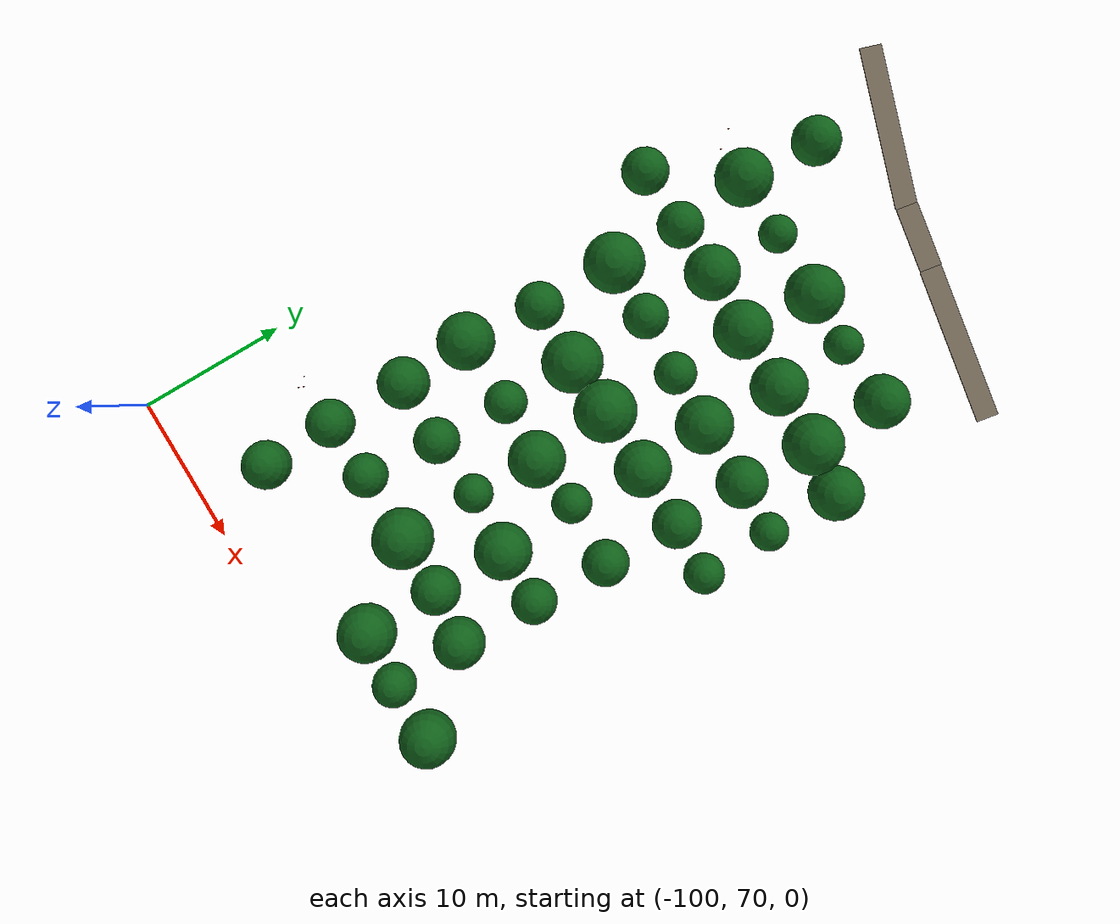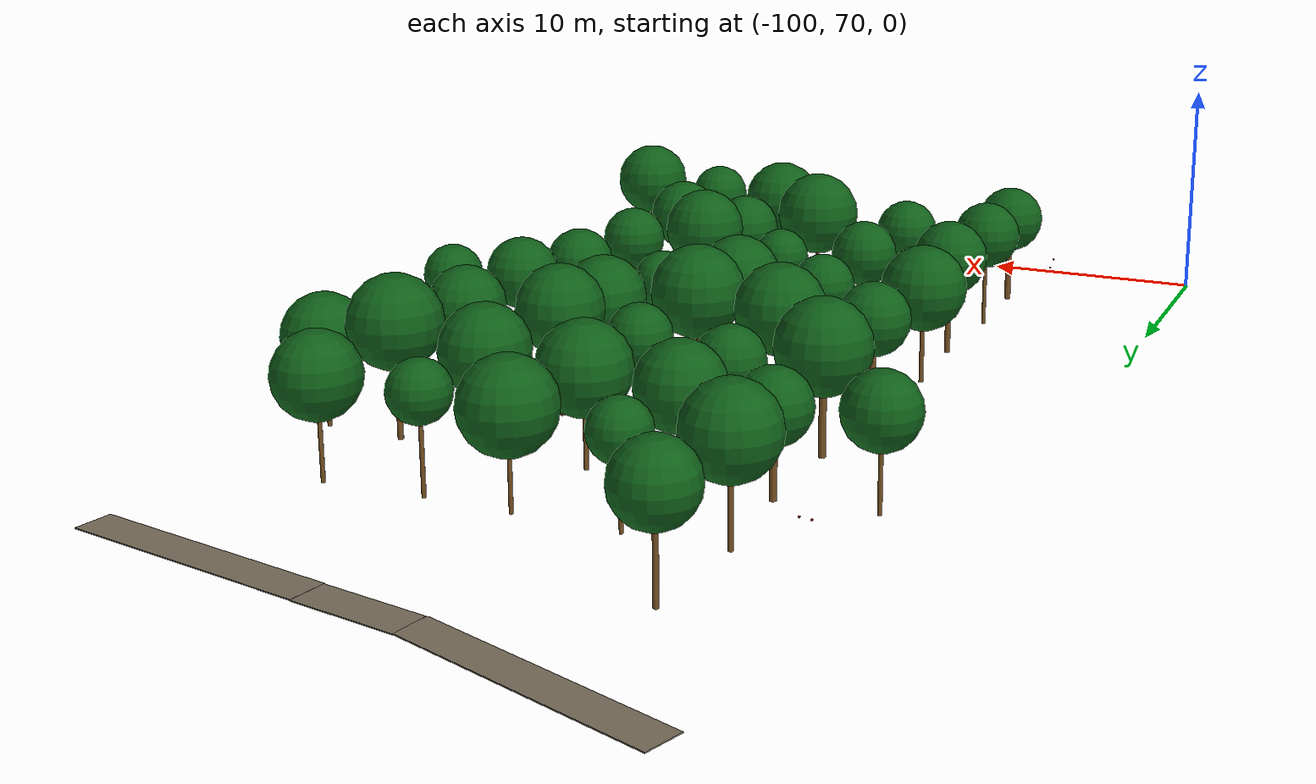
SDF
<sdf version="1.9">
 <world name="cheongsong_orchard">
  <model name="road_63">
   <static>true</static>
   <pose>-76.1 118.3 0.02 0 0 2.9706</pose>
   <link name="link">
    <collision name="collision">
     <geometry><box><size>10.6 1.5 0.04</size></box></geometry>
     <surface><friction><ode><mu>0.9</mu><mu2>0.9</mu2></ode></friction></surface>
    </collision>
    <visual name="visual">
     <geometry><box><size>10.6 1.5 0.04</size></box></geometry>
     <material><ambient>0.4 0.35 0.28 1</ambient><diffuse>0.5 0.45 0.38 1</diffuse></material>
    </visual>
   </link>
  </model>
  <model name="road_64">
   <static>true</static>
   <pose>-83.5 119.6 0.02 0 0 2.9759</pose>
   <link name="link">
    <collision name="collision">
     <geometry><box><size>4.4 1.5 0.04</size></box></geometry>
     <surface><friction><ode><mu>0.9</mu><mu2>0.9</mu2></ode></friction></surface>
    </collision>
    <visual name="visual">
     <geometry><box><size>4.4 1.5 0.04</size></box></geometry>
     <material><ambient>0.4 0.35 0.28 1</ambient><diffuse>0.5 0.45 0.38 1</diffuse></material>
    </visual>
   </link>
  </model>
  <model name="road_65">
   <static>true</static>
   <pose>-90.8 121.6 0.02 0 0 2.8271</pose>
   <link name="link">
    <collision name="collision">
     <geometry><box><size>10.9 1.5 0.04</size></box></geometry>
     <surface><friction><ode><mu>0.9</mu><mu2>0.9</mu2></ode></friction></surface>
    </collision>
    <visual name="visual">
     <geometry><box><size>10.9 1.5 0.04</size></box></geometry>
     <material><ambient>0.4 0.35 0.28 1</ambient><diffuse>0.5 0.45 0.38 1</diffuse></material>
    </visual>
   </link>
  </model>
  <model name="apple_tree_1976">
   <static>true</static>
   <pose>-92.21 75.95 0 0 0 0</pose>
   <link name="link">
    <collision name="trunk_col">
     <pose>0 0 1.26 0 0 0</pose>
     <geometry><cylinder><radius>0.140</radius><length>2.53</length></cylinder></geometry>
    </collision>
    <visual name="trunk_vis">
     <pose>0 0 1.26 0 0 0</pose>
     <geometry><cylinder><radius>0.140</radius><length>2.53</length></cylinder></geometry>
     <material><ambient>0.35 0.22 0.08 1</ambient><diffuse>0.45 0.30 0.12 1</diffuse></material>
    </visual>
    <collision name="canopy_col">
     <pose>0 0 4.08 0 0 0</pose>
     <geometry><sphere><radius>1.55</radius></sphere></geometry>
    </collision>
    <visual name="canopy_vis">
     <pose>0 0 4.08 0 0 0</pose>
     <geometry><sphere><radius>1.55</radius></sphere></geometry>
     <material><ambient>0.04 0.28 0.06 1</ambient><diffuse>0.06 0.38 0.10 1</diffuse></material>
    </visual>
   </link>
  </model>
  <model name="apple_tree_1979">
   <static>true</static>
   <pose>-79.98 75.96 0 0 0 0</pose>
   <link name="link">
    <collision name="trunk_col">
     <pose>0 0 1.09 0 0 0</pose>
     <geometry><cylinder><radius>0.108</radius><length>2.17</length></cylinder></geometry>
    </collision>
    <visual name="trunk_vis">
     <pose>0 0 1.09 0 0 0</pose>
     <geometry><cylinder><radius>0.108</radius><length>2.17</length></cylinder></geometry>
     <material><ambient>0.35 0.22 0.08 1</ambient><diffuse>0.45 0.30 0.12 1</diffuse></material>
    </visual>
    <collision name="canopy_col">
     <pose>0 0 4.04 0 0 0</pose>
     <geometry><sphere><radius>1.87</radius></sphere></geometry>
    </collision>
    <visual name="canopy_vis">
     <pose>0 0 4.04 0 0 0</pose>
     <geometry><sphere><radius>1.87</radius></sphere></geometry>
     <material><ambient>0.04 0.28 0.06 1</ambient><diffuse>0.06 0.38 0.10 1</diffuse></material>
    </visual>
   </link>
  </model>
  <model name="apple_tree_1980">
   <static>true</static>
   <pose>-76.31 75.76 0 0 0 0</pose>
   <link name="link">
    <collision name="trunk_col">
     <pose>0 0 1.29 0 0 0</pose>
     <geometry><cylinder><radius>0.095</radius><length>2.57</length></cylinder></geometry>
    </collision>
    <visual name="trunk_vis">
     <pose>0 0 1.29 0 0 0</pose>
     <geometry><cylinder><radius>0.095</radius><length>2.57</length></cylinder></geometry>
     <material><ambient>0.35 0.22 0.08 1</ambient><diffuse>0.45 0.30 0.12 1</diffuse></material>
    </visual>
    <collision name="canopy_col">
     <pose>0 0 3.98 0 0 0</pose>
     <geometry><sphere><radius>1.40</radius></sphere></geometry>
    </collision>
    <visual name="canopy_vis">
     <pose>0 0 3.98 0 0 0</pose>
     <geometry><sphere><radius>1.40</radius></sphere></geometry>
     <material><ambient>0.04 0.28 0.06 1</ambient><diffuse>0.06 0.38 0.10 1</diffuse></material>
    </visual>
   </link>
  </model>
  <model name="apple_tree_1981">
   <static>true</static>
   <pose>-72.44 75.97 0 0 0 0</pose>
   <link name="link">
    <collision name="trunk_col">
     <pose>0 0 1.32 0 0 0</pose>
     <geometry><cylinder><radius>0.081</radius><length>2.65</length></cylinder></geometry>
    </collision>
    <visual name="trunk_vis">
     <pose>0 0 1.32 0 0 0</pose>
     <geometry><cylinder><radius>0.081</radius><length>2.65</length></cylinder></geometry>
     <material><ambient>0.35 0.22 0.08 1</ambient><diffuse>0.45 0.30 0.12 1</diffuse></material>
    </visual>
    <collision name="canopy_col">
     <pose>0 0 4.44 0 0 0</pose>
     <geometry><sphere><radius>1.80</radius></sphere></geometry>
    </collision>
    <visual name="canopy_vis">
     <pose>0 0 4.44 0 0 0</pose>
     <geometry><sphere><radius>1.80</radius></sphere></geometry>
     <material><ambient>0.04 0.28 0.06 1</ambient><diffuse>0.06 0.38 0.10 1</diffuse></material>
    </visual>
   </link>
  </model>
  <model name="apple_tree_2031">
   <static>true</static>
   <pose>-92.38 80.76 0 0 0 0</pose>
   <link name="link">
    <collision name="trunk_col">
     <pose>0 0 1.40 0 0 0</pose>
     <geometry><cylinder><radius>0.085</radius><length>2.80</length></cylinder></geometry>
    </collision>
    <visual name="trunk_vis">
     <pose>0 0 1.40 0 0 0</pose>
     <geometry><cylinder><radius>0.085</radius><length>2.80</length></cylinder></geometry>
     <material><ambient>0.35 0.22 0.08 1</ambient><diffuse>0.45 0.30 0.12 1</diffuse></material>
    </visual>
    <collision name="canopy_col">
     <pose>0 0 4.34 0 0 0</pose>
     <geometry><sphere><radius>1.53</radius></sphere></geometry>
    </collision>
    <visual name="canopy_vis">
     <pose>0 0 4.34 0 0 0</pose>
     <geometry><sphere><radius>1.53</radius></sphere></geometry>
     <material><ambient>0.04 0.28 0.06 1</ambient><diffuse>0.06 0.38 0.10 1</diffuse></material>
    </visual>
   </link>
  </model>
  <model name="apple_tree_2032">
   <static>true</static>
   <pose>-88.48 80.97 0 0 0 0</pose>
   <link name="link">
    <collision name="trunk_col">
     <pose>0 0 1.41 0 0 0</pose>
     <geometry><cylinder><radius>0.101</radius><length>2.83</length></cylinder></geometry>
    </collision>
    <visual name="trunk_vis">
     <pose>0 0 1.41 0 0 0</pose>
     <geometry><cylinder><radius>0.101</radius><length>2.83</length></cylinder></geometry>
     <material><ambient>0.35 0.22 0.08 1</ambient><diffuse>0.45 0.30 0.12 1</diffuse></material>
    </visual>
    <collision name="canopy_col">
     <pose>0 0 4.24 0 0 0</pose>
     <geometry><sphere><radius>1.41</radius></sphere></geometry>
    </collision>
    <visual name="canopy_vis">
     <pose>0 0 4.24 0 0 0</pose>
     <geometry><sphere><radius>1.41</radius></sphere></geometry>
     <material><ambient>0.04 0.28 0.06 1</ambient><diffuse>0.06 0.38 0.10 1</diffuse></material>
    </visual>
   </link>
  </model>
  <model name="apple_tree_2033">
   <static>true</static>
   <pose>-83.93 81.04 0 0 0 0</pose>
   <link name="link">
    <collision name="trunk_col">
     <pose>0 0 1.37 0 0 0</pose>
     <geometry><cylinder><radius>0.094</radius><length>2.73</length></cylinder></geometry>
    </collision>
    <visual name="trunk_vis">
     <pose>0 0 1.37 0 0 0</pose>
     <geometry><cylinder><radius>0.094</radius><length>2.73</length></cylinder></geometry>
     <material><ambient>0.35 0.22 0.08 1</ambient><diffuse>0.45 0.30 0.12 1</diffuse></material>
    </visual>
    <collision name="canopy_col">
     <pose>0 0 4.67 0 0 0</pose>
     <geometry><sphere><radius>1.94</radius></sphere></geometry>
    </collision>
    <visual name="canopy_vis">
     <pose>0 0 4.67 0 0 0</pose>
     <geometry><sphere><radius>1.94</radius></sphere></geometry>
     <material><ambient>0.04 0.28 0.06 1</ambient><diffuse>0.06 0.38 0.10 1</diffuse></material>
    </visual>
   </link>
  </model>
  <model name="apple_tree_2034">
   <static>true</static>
   <pose>-80.04 80.92 0 0 0 0</pose>
   <link name="link">
    <collision name="trunk_col">
     <pose>0 0 0.99 0 0 0</pose>
     <geometry><cylinder><radius>0.145</radius><length>1.98</length></cylinder></geometry>
    </collision>
    <visual name="trunk_vis">
     <pose>0 0 0.99 0 0 0</pose>
     <geometry><cylinder><radius>0.145</radius><length>1.98</length></cylinder></geometry>
     <material><ambient>0.35 0.22 0.08 1</ambient><diffuse>0.45 0.30 0.12 1</diffuse></material>
    </visual>
    <collision name="canopy_col">
     <pose>0 0 3.56 0 0 0</pose>
     <geometry><sphere><radius>1.58</radius></sphere></geometry>
    </collision>
    <visual name="canopy_vis">
     <pose>0 0 3.56 0 0 0</pose>
     <geometry><sphere><radius>1.58</radius></sphere></geometry>
     <material><ambient>0.04 0.28 0.06 1</ambient><diffuse>0.06 0.38 0.10 1</diffuse></material>
    </visual>
   </link>
  </model>
  <model name="apple_tree_2035">
   <static>true</static>
   <pose>-76.48 80.56 0 0 0 0</pose>
   <link name="link">
    <collision name="trunk_col">
     <pose>0 0 1.09 0 0 0</pose>
     <geometry><cylinder><radius>0.141</radius><length>2.18</length></cylinder></geometry>
    </collision>
    <visual name="trunk_vis">
     <pose>0 0 1.09 0 0 0</pose>
     <geometry><cylinder><radius>0.141</radius><length>2.18</length></cylinder></geometry>
     <material><ambient>0.35 0.22 0.08 1</ambient><diffuse>0.45 0.30 0.12 1</diffuse></material>
    </visual>
    <collision name="canopy_col">
     <pose>0 0 3.84 0 0 0</pose>
     <geometry><sphere><radius>1.66</radius></sphere></geometry>
    </collision>
    <visual name="canopy_vis">
     <pose>0 0 3.84 0 0 0</pose>
     <geometry><sphere><radius>1.66</radius></sphere></geometry>
     <material><ambient>0.04 0.28 0.06 1</ambient><diffuse>0.06 0.38 0.10 1</diffuse></material>
    </visual>
   </link>
  </model>
  <model name="apple_tree_2088">
   <static>true</static>
   <pose>-92.20 85.96 0 0 0 0</pose>
   <link name="link">
    <collision name="trunk_col">
     <pose>0 0 1.38 0 0 0</pose>
     <geometry><cylinder><radius>0.121</radius><length>2.77</length></cylinder></geometry>
    </collision>
    <visual name="trunk_vis">
     <pose>0 0 1.38 0 0 0</pose>
     <geometry><cylinder><radius>0.121</radius><length>2.77</length></cylinder></geometry>
     <material><ambient>0.35 0.22 0.08 1</ambient><diffuse>0.45 0.30 0.12 1</diffuse></material>
    </visual>
    <collision name="canopy_col">
     <pose>0 0 4.42 0 0 0</pose>
     <geometry><sphere><radius>1.65</radius></sphere></geometry>
    </collision>
    <visual name="canopy_vis">
     <pose>0 0 4.42 0 0 0</pose>
     <geometry><sphere><radius>1.65</radius></sphere></geometry>
     <material><ambient>0.04 0.28 0.06 1</ambient><diffuse>0.06 0.38 0.10 1</diffuse></material>
    </visual>
   </link>
  </model>
  <model name="apple_tree_2089">
   <static>true</static>
   <pose>-88.08 85.87 0 0 0 0</pose>
   <link name="link">
    <collision name="trunk_col">
     <pose>0 0 1.36 0 0 0</pose>
     <geometry><cylinder><radius>0.090</radius><length>2.72</length></cylinder></geometry>
    </collision>
    <visual name="trunk_vis">
     <pose>0 0 1.36 0 0 0</pose>
     <geometry><cylinder><radius>0.090</radius><length>2.72</length></cylinder></geometry>
     <material><ambient>0.35 0.22 0.08 1</ambient><diffuse>0.45 0.30 0.12 1</diffuse></material>
    </visual>
    <collision name="canopy_col">
     <pose>0 0 4.19 0 0 0</pose>
     <geometry><sphere><radius>1.47</radius></sphere></geometry>
    </collision>
    <visual name="canopy_vis">
     <pose>0 0 4.19 0 0 0</pose>
     <geometry><sphere><radius>1.47</radius></sphere></geometry>
     <material><ambient>0.04 0.28 0.06 1</ambient><diffuse>0.06 0.38 0.10 1</diffuse></material>
    </visual>
   </link>
  </model>
  <model name="apple_tree_2090">
   <static>true</static>
   <pose>-84.07 86.10 0 0 0 0</pose>
   <link name="link">
    <collision name="trunk_col">
     <pose>0 0 1.23 0 0 0</pose>
     <geometry><cylinder><radius>0.123</radius><length>2.47</length></cylinder></geometry>
    </collision>
    <visual name="trunk_vis">
     <pose>0 0 1.23 0 0 0</pose>
     <geometry><cylinder><radius>0.123</radius><length>2.47</length></cylinder></geometry>
     <material><ambient>0.35 0.22 0.08 1</ambient><diffuse>0.45 0.30 0.12 1</diffuse></material>
    </visual>
    <collision name="canopy_col">
     <pose>0 0 3.72 0 0 0</pose>
     <geometry><sphere><radius>1.25</radius></sphere></geometry>
    </collision>
    <visual name="canopy_vis">
     <pose>0 0 3.72 0 0 0</pose>
     <geometry><sphere><radius>1.25</radius></sphere></geometry>
     <material><ambient>0.04 0.28 0.06 1</ambient><diffuse>0.06 0.38 0.10 1</diffuse></material>
    </visual>
   </link>
  </model>
  <model name="apple_tree_2091">
   <static>true</static>
   <pose>-80.09 85.97 0 0 0 0</pose>
   <link name="link">
    <collision name="trunk_col">
     <pose>0 0 1.41 0 0 0</pose>
     <geometry><cylinder><radius>0.090</radius><length>2.82</length></cylinder></geometry>
    </collision>
    <visual name="trunk_vis">
     <pose>0 0 1.41 0 0 0</pose>
     <geometry><cylinder><radius>0.090</radius><length>2.82</length></cylinder></geometry>
     <material><ambient>0.35 0.22 0.08 1</ambient><diffuse>0.45 0.30 0.12 1</diffuse></material>
    </visual>
    <collision name="canopy_col">
     <pose>0 0 4.63 0 0 0</pose>
     <geometry><sphere><radius>1.82</radius></sphere></geometry>
    </collision>
    <visual name="canopy_vis">
     <pose>0 0 4.63 0 0 0</pose>
     <geometry><sphere><radius>1.82</radius></sphere></geometry>
     <material><ambient>0.04 0.28 0.06 1</ambient><diffuse>0.06 0.38 0.10 1</diffuse></material>
    </visual>
   </link>
  </model>
  <model name="apple_tree_2092">
   <static>true</static>
   <pose>-76.31 85.92 0 0 0 0</pose>
   <link name="link">
    <collision name="trunk_col">
     <pose>0 0 1.15 0 0 0</pose>
     <geometry><cylinder><radius>0.118</radius><length>2.30</length></cylinder></geometry>
    </collision>
    <visual name="trunk_vis">
     <pose>0 0 1.15 0 0 0</pose>
     <geometry><cylinder><radius>0.118</radius><length>2.30</length></cylinder></geometry>
     <material><ambient>0.35 0.22 0.08 1</ambient><diffuse>0.45 0.30 0.12 1</diffuse></material>
    </visual>
    <collision name="canopy_col">
     <pose>0 0 3.76 0 0 0</pose>
     <geometry><sphere><radius>1.46</radius></sphere></geometry>
    </collision>
    <visual name="canopy_vis">
     <pose>0 0 3.76 0 0 0</pose>
     <geometry><sphere><radius>1.46</radius></sphere></geometry>
     <material><ambient>0.04 0.28 0.06 1</ambient><diffuse>0.06 0.38 0.10 1</diffuse></material>
    </visual>
   </link>
  </model>
  <model name="apple_tree_2144">
   <static>true</static>
   <pose>-92.48 90.59 0 0 0 0</pose>
   <link name="link">
    <collision name="trunk_col">
     <pose>0 0 1.18 0 0 0</pose>
     <geometry><cylinder><radius>0.094</radius><length>2.36</length></cylinder></geometry>
    </collision>
    <visual name="trunk_vis">
     <pose>0 0 1.18 0 0 0</pose>
     <geometry><cylinder><radius>0.094</radius><length>2.36</length></cylinder></geometry>
     <material><ambient>0.35 0.22 0.08 1</ambient><diffuse>0.45 0.30 0.12 1</diffuse></material>
    </visual>
    <collision name="canopy_col">
     <pose>0 0 4.20 0 0 0</pose>
     <geometry><sphere><radius>1.84</radius></sphere></geometry>
    </collision>
    <visual name="canopy_vis">
     <pose>0 0 4.20 0 0 0</pose>
     <geometry><sphere><radius>1.84</radius></sphere></geometry>
     <material><ambient>0.04 0.28 0.06 1</ambient><diffuse>0.06 0.38 0.10 1</diffuse></material>
    </visual>
   </link>
  </model>
  <model name="apple_tree_2145">
   <static>true</static>
   <pose>-87.96 90.77 0 0 0 0</pose>
   <link name="link">
    <collision name="trunk_col">
     <pose>0 0 1.25 0 0 0</pose>
     <geometry><cylinder><radius>0.149</radius><length>2.50</length></cylinder></geometry>
    </collision>
    <visual name="trunk_vis">
     <pose>0 0 1.25 0 0 0</pose>
     <geometry><cylinder><radius>0.149</radius><length>2.50</length></cylinder></geometry>
     <material><ambient>0.35 0.22 0.08 1</ambient><diffuse>0.45 0.30 0.12 1</diffuse></material>
    </visual>
    <collision name="canopy_col">
     <pose>0 0 3.87 0 0 0</pose>
     <geometry><sphere><radius>1.37</radius></sphere></geometry>
    </collision>
    <visual name="canopy_vis">
     <pose>0 0 3.87 0 0 0</pose>
     <geometry><sphere><radius>1.37</radius></sphere></geometry>
     <material><ambient>0.04 0.28 0.06 1</ambient><diffuse>0.06 0.38 0.10 1</diffuse></material>
    </visual>
   </link>
  </model>
  <model name="apple_tree_2146">
   <static>true</static>
   <pose>-83.89 90.61 0 0 0 0</pose>
   <link name="link">
    <collision name="trunk_col">
     <pose>0 0 0.99 0 0 0</pose>
     <geometry><cylinder><radius>0.131</radius><length>1.99</length></cylinder></geometry>
    </collision>
    <visual name="trunk_vis">
     <pose>0 0 0.99 0 0 0</pose>
     <geometry><cylinder><radius>0.131</radius><length>1.99</length></cylinder></geometry>
     <material><ambient>0.35 0.22 0.08 1</ambient><diffuse>0.45 0.30 0.12 1</diffuse></material>
    </visual>
    <collision name="canopy_col">
     <pose>0 0 3.82 0 0 0</pose>
     <geometry><sphere><radius>1.83</radius></sphere></geometry>
    </collision>
    <visual name="canopy_vis">
     <pose>0 0 3.82 0 0 0</pose>
     <geometry><sphere><radius>1.83</radius></sphere></geometry>
     <material><ambient>0.04 0.28 0.06 1</ambient><diffuse>0.06 0.38 0.10 1</diffuse></material>
    </visual>
   </link>
  </model>
  <model name="apple_tree_2147">
   <static>true</static>
   <pose>-80.36 91.06 0 0 0 0</pose>
   <link name="link">
    <collision name="trunk_col">
     <pose>0 0 1.06 0 0 0</pose>
     <geometry><cylinder><radius>0.127</radius><length>2.11</length></cylinder></geometry>
    </collision>
    <visual name="trunk_vis">
     <pose>0 0 1.06 0 0 0</pose>
     <geometry><cylinder><radius>0.127</radius><length>2.11</length></cylinder></geometry>
     <material><ambient>0.35 0.22 0.08 1</ambient><diffuse>0.45 0.30 0.12 1</diffuse></material>
    </visual>
    <collision name="canopy_col">
     <pose>0 0 3.40 0 0 0</pose>
     <geometry><sphere><radius>1.29</radius></sphere></geometry>
    </collision>
    <visual name="canopy_vis">
     <pose>0 0 3.40 0 0 0</pose>
     <geometry><sphere><radius>1.29</radius></sphere></geometry>
     <material><ambient>0.04 0.28 0.06 1</ambient><diffuse>0.06 0.38 0.10 1</diffuse></material>
    </visual>
   </link>
  </model>
  <model name="apple_tree_2148">
   <static>true</static>
   <pose>-76.09 91.00 0 0 0 0</pose>
   <link name="link">
    <collision name="trunk_col">
     <pose>0 0 1.14 0 0 0</pose>
     <geometry><cylinder><radius>0.131</radius><length>2.28</length></cylinder></geometry>
    </collision>
    <visual name="trunk_vis">
     <pose>0 0 1.14 0 0 0</pose>
     <geometry><cylinder><radius>0.131</radius><length>2.28</length></cylinder></geometry>
     <material><ambient>0.35 0.22 0.08 1</ambient><diffuse>0.45 0.30 0.12 1</diffuse></material>
    </visual>
    <collision name="canopy_col">
     <pose>0 0 3.78 0 0 0</pose>
     <geometry><sphere><radius>1.50</radius></sphere></geometry>
    </collision>
    <visual name="canopy_vis">
     <pose>0 0 3.78 0 0 0</pose>
     <geometry><sphere><radius>1.50</radius></sphere></geometry>
     <material><ambient>0.04 0.28 0.06 1</ambient><diffuse>0.06 0.38 0.10 1</diffuse></material>
    </visual>
   </link>
  </model>
  <model name="apple_tree_2185">
   <static>true</static>
   <pose>-92.04 95.67 0 0 0 0</pose>
   <link name="link">
    <collision name="trunk_col">
     <pose>0 0 1.30 0 0 0</pose>
     <geometry><cylinder><radius>0.127</radius><length>2.59</length></cylinder></geometry>
    </collision>
    <visual name="trunk_vis">
     <pose>0 0 1.30 0 0 0</pose>
     <geometry><cylinder><radius>0.127</radius><length>2.59</length></cylinder></geometry>
     <material><ambient>0.35 0.22 0.08 1</ambient><diffuse>0.45 0.30 0.12 1</diffuse></material>
    </visual>
    <collision name="canopy_col">
     <pose>0 0 4.12 0 0 0</pose>
     <geometry><sphere><radius>1.53</radius></sphere></geometry>
    </collision>
    <visual name="canopy_vis">
     <pose>0 0 4.12 0 0 0</pose>
     <geometry><sphere><radius>1.53</radius></sphere></geometry>
     <material><ambient>0.04 0.28 0.06 1</ambient><diffuse>0.06 0.38 0.10 1</diffuse></material>
    </visual>
   </link>
  </model>
  <model name="apple_tree_2186">
   <static>true</static>
   <pose>-87.95 95.63 0 0 0 0</pose>
   <link name="link">
    <collision name="trunk_col">
     <pose>0 0 1.05 0 0 0</pose>
     <geometry><cylinder><radius>0.087</radius><length>2.11</length></cylinder></geometry>
    </collision>
    <visual name="trunk_vis">
     <pose>0 0 1.05 0 0 0</pose>
     <geometry><cylinder><radius>0.087</radius><length>2.11</length></cylinder></geometry>
     <material><ambient>0.35 0.22 0.08 1</ambient><diffuse>0.45 0.30 0.12 1</diffuse></material>
    </visual>
    <collision name="canopy_col">
     <pose>0 0 4.06 0 0 0</pose>
     <geometry><sphere><radius>1.95</radius></sphere></geometry>
    </collision>
    <visual name="canopy_vis">
     <pose>0 0 4.06 0 0 0</pose>
     <geometry><sphere><radius>1.95</radius></sphere></geometry>
     <material><ambient>0.04 0.28 0.06 1</ambient><diffuse>0.06 0.38 0.10 1</diffuse></material>
    </visual>
   </link>
  </model>
  <model name="apple_tree_2187">
   <static>true</static>
   <pose>-84.30 95.84 0 0 0 0</pose>
   <link name="link">
    <collision name="trunk_col">
     <pose>0 0 1.24 0 0 0</pose>
     <geometry><cylinder><radius>0.085</radius><length>2.48</length></cylinder></geometry>
    </collision>
    <visual name="trunk_vis">
     <pose>0 0 1.24 0 0 0</pose>
     <geometry><cylinder><radius>0.085</radius><length>2.48</length></cylinder></geometry>
     <material><ambient>0.35 0.22 0.08 1</ambient><diffuse>0.45 0.30 0.12 1</diffuse></material>
    </visual>
    <collision name="canopy_col">
     <pose>0 0 4.47 0 0 0</pose>
     <geometry><sphere><radius>1.99</radius></sphere></geometry>
    </collision>
    <visual name="canopy_vis">
     <pose>0 0 4.47 0 0 0</pose>
     <geometry><sphere><radius>1.99</radius></sphere></geometry>
     <material><ambient>0.04 0.28 0.06 1</ambient><diffuse>0.06 0.38 0.10 1</diffuse></material>
    </visual>
   </link>
  </model>
  <model name="apple_tree_2188">
   <static>true</static>
   <pose>-79.97 96.02 0 0 0 0</pose>
   <link name="link">
    <collision name="trunk_col">
     <pose>0 0 0.98 0 0 0</pose>
     <geometry><cylinder><radius>0.097</radius><length>1.95</length></cylinder></geometry>
    </collision>
    <visual name="trunk_vis">
     <pose>0 0 0.98 0 0 0</pose>
     <geometry><cylinder><radius>0.097</radius><length>1.95</length></cylinder></geometry>
     <material><ambient>0.35 0.22 0.08 1</ambient><diffuse>0.45 0.30 0.12 1</diffuse></material>
    </visual>
    <collision name="canopy_col">
     <pose>0 0 3.78 0 0 0</pose>
     <geometry><sphere><radius>1.82</radius></sphere></geometry>
    </collision>
    <visual name="canopy_vis">
     <pose>0 0 3.78 0 0 0</pose>
     <geometry><sphere><radius>1.82</radius></sphere></geometry>
     <material><ambient>0.04 0.28 0.06 1</ambient><diffuse>0.06 0.38 0.10 1</diffuse></material>
    </visual>
   </link>
  </model>
  <model name="apple_tree_2189">
   <static>true</static>
   <pose>-76.01 96.08 0 0 0 0</pose>
   <link name="link">
    <collision name="trunk_col">
     <pose>0 0 1.45 0 0 0</pose>
     <geometry><cylinder><radius>0.088</radius><length>2.89</length></cylinder></geometry>
    </collision>
    <visual name="trunk_vis">
     <pose>0 0 1.45 0 0 0</pose>
     <geometry><cylinder><radius>0.088</radius><length>2.89</length></cylinder></geometry>
     <material><ambient>0.35 0.22 0.08 1</ambient><diffuse>0.45 0.30 0.12 1</diffuse></material>
    </visual>
    <collision name="canopy_col">
     <pose>0 0 4.45 0 0 0</pose>
     <geometry><sphere><radius>1.56</radius></sphere></geometry>
    </collision>
    <visual name="canopy_vis">
     <pose>0 0 4.45 0 0 0</pose>
     <geometry><sphere><radius>1.56</radius></sphere></geometry>
     <material><ambient>0.04 0.28 0.06 1</ambient><diffuse>0.06 0.38 0.10 1</diffuse></material>
    </visual>
   </link>
  </model>
  <model name="apple_tree_2190">
   <static>true</static>
   <pose>-72.42 95.97 0 0 0 0</pose>
   <link name="link">
    <collision name="trunk_col">
     <pose>0 0 1.36 0 0 0</pose>
     <geometry><cylinder><radius>0.113</radius><length>2.71</length></cylinder></geometry>
    </collision>
    <visual name="trunk_vis">
     <pose>0 0 1.36 0 0 0</pose>
     <geometry><cylinder><radius>0.113</radius><length>2.71</length></cylinder></geometry>
     <material><ambient>0.35 0.22 0.08 1</ambient><diffuse>0.45 0.30 0.12 1</diffuse></material>
    </visual>
    <collision name="canopy_col">
     <pose>0 0 4.01 0 0 0</pose>
     <geometry><sphere><radius>1.30</radius></sphere></geometry>
    </collision>
    <visual name="canopy_vis">
     <pose>0 0 4.01 0 0 0</pose>
     <geometry><sphere><radius>1.30</radius></sphere></geometry>
     <material><ambient>0.04 0.28 0.06 1</ambient><diffuse>0.06 0.38 0.10 1</diffuse></material>
    </visual>
   </link>
  </model>
  <model name="apple_tree_2226">
   <static>true</static>
   <pose>-91.93 101.02 0 0 0 0</pose>
   <link name="link">
    <collision name="trunk_col">
     <pose>0 0 1.26 0 0 0</pose>
     <geometry><cylinder><radius>0.145</radius><length>2.51</length></cylinder></geometry>
    </collision>
    <visual name="trunk_vis">
     <pose>0 0 1.26 0 0 0</pose>
     <geometry><cylinder><radius>0.145</radius><length>2.51</length></cylinder></geometry>
     <material><ambient>0.35 0.22 0.08 1</ambient><diffuse>0.45 0.30 0.12 1</diffuse></material>
    </visual>
    <collision name="canopy_col">
     <pose>0 0 4.45 0 0 0</pose>
     <geometry><sphere><radius>1.94</radius></sphere></geometry>
    </collision>
    <visual name="canopy_vis">
     <pose>0 0 4.45 0 0 0</pose>
     <geometry><sphere><radius>1.94</radius></sphere></geometry>
     <material><ambient>0.04 0.28 0.06 1</ambient><diffuse>0.06 0.38 0.10 1</diffuse></material>
    </visual>
   </link>
  </model>
  <model name="apple_tree_2227">
   <static>true</static>
   <pose>-88.11 101.10 0 0 0 0</pose>
   <link name="link">
    <collision name="trunk_col">
     <pose>0 0 0.98 0 0 0</pose>
     <geometry><cylinder><radius>0.147</radius><length>1.95</length></cylinder></geometry>
    </collision>
    <visual name="trunk_vis">
     <pose>0 0 0.98 0 0 0</pose>
     <geometry><cylinder><radius>0.147</radius><length>1.95</length></cylinder></geometry>
     <material><ambient>0.35 0.22 0.08 1</ambient><diffuse>0.45 0.30 0.12 1</diffuse></material>
    </visual>
    <collision name="canopy_col">
     <pose>0 0 3.42 0 0 0</pose>
     <geometry><sphere><radius>1.46</radius></sphere></geometry>
    </collision>
    <visual name="canopy_vis">
     <pose>0 0 3.42 0 0 0</pose>
     <geometry><sphere><radius>1.46</radius></sphere></geometry>
     <material><ambient>0.04 0.28 0.06 1</ambient><diffuse>0.06 0.38 0.10 1</diffuse></material>
    </visual>
   </link>
  </model>
  <model name="apple_tree_2228">
   <static>true</static>
   <pose>-84.08 100.84 0 0 0 0</pose>
   <link name="link">
    <collision name="trunk_col">
     <pose>0 0 1.25 0 0 0</pose>
     <geometry><cylinder><radius>0.080</radius><length>2.50</length></cylinder></geometry>
    </collision>
    <visual name="trunk_vis">
     <pose>0 0 1.25 0 0 0</pose>
     <geometry><cylinder><radius>0.080</radius><length>2.50</length></cylinder></geometry>
     <material><ambient>0.35 0.22 0.08 1</ambient><diffuse>0.45 0.30 0.12 1</diffuse></material>
    </visual>
    <collision name="canopy_col">
     <pose>0 0 3.86 0 0 0</pose>
     <geometry><sphere><radius>1.35</radius></sphere></geometry>
    </collision>
    <visual name="canopy_vis">
     <pose>0 0 3.86 0 0 0</pose>
     <geometry><sphere><radius>1.35</radius></sphere></geometry>
     <material><ambient>0.04 0.28 0.06 1</ambient><diffuse>0.06 0.38 0.10 1</diffuse></material>
    </visual>
   </link>
  </model>
  <model name="apple_tree_2229">
   <static>true</static>
   <pose>-80.42 100.69 0 0 0 0</pose>
   <link name="link">
    <collision name="trunk_col">
     <pose>0 0 1.35 0 0 0</pose>
     <geometry><cylinder><radius>0.098</radius><length>2.70</length></cylinder></geometry>
    </collision>
    <visual name="trunk_vis">
     <pose>0 0 1.35 0 0 0</pose>
     <geometry><cylinder><radius>0.098</radius><length>2.70</length></cylinder></geometry>
     <material><ambient>0.35 0.22 0.08 1</ambient><diffuse>0.45 0.30 0.12 1</diffuse></material>
    </visual>
    <collision name="canopy_col">
     <pose>0 0 4.54 0 0 0</pose>
     <geometry><sphere><radius>1.84</radius></sphere></geometry>
    </collision>
    <visual name="canopy_vis">
     <pose>0 0 4.54 0 0 0</pose>
     <geometry><sphere><radius>1.84</radius></sphere></geometry>
     <material><ambient>0.04 0.28 0.06 1</ambient><diffuse>0.06 0.38 0.10 1</diffuse></material>
    </visual>
   </link>
  </model>
  <model name="apple_tree_2230">
   <static>true</static>
   <pose>-76.14 100.89 0 0 0 0</pose>
   <link name="link">
    <collision name="trunk_col">
     <pose>0 0 1.30 0 0 0</pose>
     <geometry><cylinder><radius>0.147</radius><length>2.60</length></cylinder></geometry>
    </collision>
    <visual name="trunk_vis">
     <pose>0 0 1.30 0 0 0</pose>
     <geometry><cylinder><radius>0.147</radius><length>2.60</length></cylinder></geometry>
     <material><ambient>0.35 0.22 0.08 1</ambient><diffuse>0.45 0.30 0.12 1</diffuse></material>
    </visual>
    <collision name="canopy_col">
     <pose>0 0 4.26 0 0 0</pose>
     <geometry><sphere><radius>1.65</radius></sphere></geometry>
    </collision>
    <visual name="canopy_vis">
     <pose>0 0 4.26 0 0 0</pose>
     <geometry><sphere><radius>1.65</radius></sphere></geometry>
     <material><ambient>0.04 0.28 0.06 1</ambient><diffuse>0.06 0.38 0.10 1</diffuse></material>
    </visual>
   </link>
  </model>
  <model name="apple_tree_2231">
   <static>true</static>
   <pose>-72.44 100.85 0 0 0 0</pose>
   <link name="link">
    <collision name="trunk_col">
     <pose>0 0 1.04 0 0 0</pose>
     <geometry><cylinder><radius>0.109</radius><length>2.08</length></cylinder></geometry>
    </collision>
    <visual name="trunk_vis">
     <pose>0 0 1.04 0 0 0</pose>
     <geometry><cylinder><radius>0.109</radius><length>2.08</length></cylinder></geometry>
     <material><ambient>0.35 0.22 0.08 1</ambient><diffuse>0.45 0.30 0.12 1</diffuse></material>
    </visual>
    <collision name="canopy_col">
     <pose>0 0 3.32 0 0 0</pose>
     <geometry><sphere><radius>1.24</radius></sphere></geometry>
    </collision>
    <visual name="canopy_vis">
     <pose>0 0 3.32 0 0 0</pose>
     <geometry><sphere><radius>1.24</radius></sphere></geometry>
     <material><ambient>0.04 0.28 0.06 1</ambient><diffuse>0.06 0.38 0.10 1</diffuse></material>
    </visual>
   </link>
  </model>
  <model name="apple_tree_2271">
   <static>true</static>
   <pose>-95.91 105.66 0 0 0 0</pose>
   <link name="link">
    <collision name="trunk_col">
     <pose>0 0 1.20 0 0 0</pose>
     <geometry><cylinder><radius>0.083</radius><length>2.40</length></cylinder></geometry>
    </collision>
    <visual name="trunk_vis">
     <pose>0 0 1.20 0 0 0</pose>
     <geometry><cylinder><radius>0.083</radius><length>2.40</length></cylinder></geometry>
     <material><ambient>0.35 0.22 0.08 1</ambient><diffuse>0.45 0.30 0.12 1</diffuse></material>
    </visual>
    <collision name="canopy_col">
     <pose>0 0 3.91 0 0 0</pose>
     <geometry><sphere><radius>1.51</radius></sphere></geometry>
    </collision>
    <visual name="canopy_vis">
     <pose>0 0 3.91 0 0 0</pose>
     <geometry><sphere><radius>1.51</radius></sphere></geometry>
     <material><ambient>0.04 0.28 0.06 1</ambient><diffuse>0.06 0.38 0.10 1</diffuse></material>
    </visual>
   </link>
  </model>
  <model name="apple_tree_2272">
   <static>true</static>
   <pose>-91.92 105.89 0 0 0 0</pose>
   <link name="link">
    <collision name="trunk_col">
     <pose>0 0 1.05 0 0 0</pose>
     <geometry><cylinder><radius>0.146</radius><length>2.10</length></cylinder></geometry>
    </collision>
    <visual name="trunk_vis">
     <pose>0 0 1.05 0 0 0</pose>
     <geometry><cylinder><radius>0.146</radius><length>2.10</length></cylinder></geometry>
     <material><ambient>0.35 0.22 0.08 1</ambient><diffuse>0.45 0.30 0.12 1</diffuse></material>
    </visual>
    <collision name="canopy_col">
     <pose>0 0 3.60 0 0 0</pose>
     <geometry><sphere><radius>1.50</radius></sphere></geometry>
    </collision>
    <visual name="canopy_vis">
     <pose>0 0 3.60 0 0 0</pose>
     <geometry><sphere><radius>1.50</radius></sphere></geometry>
     <material><ambient>0.04 0.28 0.06 1</ambient><diffuse>0.06 0.38 0.10 1</diffuse></material>
    </visual>
   </link>
  </model>
  <model name="apple_tree_2273">
   <static>true</static>
   <pose>-88.32 106.03 0 0 0 0</pose>
   <link name="link">
    <collision name="trunk_col">
     <pose>0 0 1.07 0 0 0</pose>
     <geometry><cylinder><radius>0.135</radius><length>2.13</length></cylinder></geometry>
    </collision>
    <visual name="trunk_vis">
     <pose>0 0 1.07 0 0 0</pose>
     <geometry><cylinder><radius>0.135</radius><length>2.13</length></cylinder></geometry>
     <material><ambient>0.35 0.22 0.08 1</ambient><diffuse>0.45 0.30 0.12 1</diffuse></material>
    </visual>
    <collision name="canopy_col">
     <pose>0 0 3.91 0 0 0</pose>
     <geometry><sphere><radius>1.78</radius></sphere></geometry>
    </collision>
    <visual name="canopy_vis">
     <pose>0 0 3.91 0 0 0</pose>
     <geometry><sphere><radius>1.78</radius></sphere></geometry>
     <material><ambient>0.04 0.28 0.06 1</ambient><diffuse>0.06 0.38 0.10 1</diffuse></material>
    </visual>
   </link>
  </model>
  <model name="apple_tree_2274">
   <static>true</static>
   <pose>-84.27 105.84 0 0 0 0</pose>
   <link name="link">
    <collision name="trunk_col">
     <pose>0 0 1.07 0 0 0</pose>
     <geometry><cylinder><radius>0.093</radius><length>2.13</length></cylinder></geometry>
    </collision>
    <visual name="trunk_vis">
     <pose>0 0 1.07 0 0 0</pose>
     <geometry><cylinder><radius>0.093</radius><length>2.13</length></cylinder></geometry>
     <material><ambient>0.35 0.22 0.08 1</ambient><diffuse>0.45 0.30 0.12 1</diffuse></material>
    </visual>
    <collision name="canopy_col">
     <pose>0 0 4.02 0 0 0</pose>
     <geometry><sphere><radius>1.89</radius></sphere></geometry>
    </collision>
    <visual name="canopy_vis">
     <pose>0 0 4.02 0 0 0</pose>
     <geometry><sphere><radius>1.89</radius></sphere></geometry>
     <material><ambient>0.04 0.28 0.06 1</ambient><diffuse>0.06 0.38 0.10 1</diffuse></material>
    </visual>
   </link>
  </model>
  <model name="apple_tree_2275">
   <static>true</static>
   <pose>-80.05 105.91 0 0 0 0</pose>
   <link name="link">
    <collision name="trunk_col">
     <pose>0 0 1.20 0 0 0</pose>
     <geometry><cylinder><radius>0.102</radius><length>2.41</length></cylinder></geometry>
    </collision>
    <visual name="trunk_vis">
     <pose>0 0 1.20 0 0 0</pose>
     <geometry><cylinder><radius>0.102</radius><length>2.41</length></cylinder></geometry>
     <material><ambient>0.35 0.22 0.08 1</ambient><diffuse>0.45 0.30 0.12 1</diffuse></material>
    </visual>
    <collision name="canopy_col">
     <pose>0 0 4.24 0 0 0</pose>
     <geometry><sphere><radius>1.83</radius></sphere></geometry>
    </collision>
    <visual name="canopy_vis">
     <pose>0 0 4.24 0 0 0</pose>
     <geometry><sphere><radius>1.83</radius></sphere></geometry>
     <material><ambient>0.04 0.28 0.06 1</ambient><diffuse>0.06 0.38 0.10 1</diffuse></material>
    </visual>
   </link>
  </model>
  <model name="apple_tree_2276">
   <static>true</static>
   <pose>-75.97 105.82 0 0 0 0</pose>
   <link name="link">
    <collision name="trunk_col">
     <pose>0 0 1.44 0 0 0</pose>
     <geometry><cylinder><radius>0.117</radius><length>2.89</length></cylinder></geometry>
    </collision>
    <visual name="trunk_vis">
     <pose>0 0 1.44 0 0 0</pose>
     <geometry><cylinder><radius>0.117</radius><length>2.89</length></cylinder></geometry>
     <material><ambient>0.35 0.22 0.08 1</ambient><diffuse>0.45 0.30 0.12 1</diffuse></material>
    </visual>
    <collision name="canopy_col">
     <pose>0 0 4.82 0 0 0</pose>
     <geometry><sphere><radius>1.93</radius></sphere></geometry>
    </collision>
    <visual name="canopy_vis">
     <pose>0 0 4.82 0 0 0</pose>
     <geometry><sphere><radius>1.93</radius></sphere></geometry>
     <material><ambient>0.04 0.28 0.06 1</ambient><diffuse>0.06 0.38 0.10 1</diffuse></material>
    </visual>
   </link>
  </model>
  <model name="apple_tree_2277">
   <static>true</static>
   <pose>-72.48 105.65 0 0 0 0</pose>
   <link name="link">
    <collision name="trunk_col">
     <pose>0 0 1.03 0 0 0</pose>
     <geometry><cylinder><radius>0.097</radius><length>2.06</length></cylinder></geometry>
    </collision>
    <visual name="trunk_vis">
     <pose>0 0 1.03 0 0 0</pose>
     <geometry><cylinder><radius>0.097</radius><length>2.06</length></cylinder></geometry>
     <material><ambient>0.35 0.22 0.08 1</ambient><diffuse>0.45 0.30 0.12 1</diffuse></material>
    </visual>
    <collision name="canopy_col">
     <pose>0 0 3.81 0 0 0</pose>
     <geometry><sphere><radius>1.76</radius></sphere></geometry>
    </collision>
    <visual name="canopy_vis">
     <pose>0 0 3.81 0 0 0</pose>
     <geometry><sphere><radius>1.76</radius></sphere></geometry>
     <material><ambient>0.04 0.28 0.06 1</ambient><diffuse>0.06 0.38 0.10 1</diffuse></material>
    </visual>
   </link>
  </model>
  <model name="apple_tree_2321">
   <static>true</static>
   <pose>-92.37 110.67 0 0 0 0</pose>
   <link name="link">
    <collision name="trunk_col">
     <pose>0 0 1.24 0 0 0</pose>
     <geometry><cylinder><radius>0.097</radius><length>2.48</length></cylinder></geometry>
    </collision>
    <visual name="trunk_vis">
     <pose>0 0 1.24 0 0 0</pose>
     <geometry><cylinder><radius>0.097</radius><length>2.48</length></cylinder></geometry>
     <material><ambient>0.35 0.22 0.08 1</ambient><diffuse>0.45 0.30 0.12 1</diffuse></material>
    </visual>
    <collision name="canopy_col">
     <pose>0 0 4.31 0 0 0</pose>
     <geometry><sphere><radius>1.84</radius></sphere></geometry>
    </collision>
    <visual name="canopy_vis">
     <pose>0 0 4.31 0 0 0</pose>
     <geometry><sphere><radius>1.84</radius></sphere></geometry>
     <material><ambient>0.04 0.28 0.06 1</ambient><diffuse>0.06 0.38 0.10 1</diffuse></material>
    </visual>
   </link>
  </model>
  <model name="apple_tree_2322">
   <static>true</static>
   <pose>-88.30 110.82 0 0 0 0</pose>
   <link name="link">
    <collision name="trunk_col">
     <pose>0 0 1.28 0 0 0</pose>
     <geometry><cylinder><radius>0.083</radius><length>2.56</length></cylinder></geometry>
    </collision>
    <visual name="trunk_vis">
     <pose>0 0 1.28 0 0 0</pose>
     <geometry><cylinder><radius>0.083</radius><length>2.56</length></cylinder></geometry>
     <material><ambient>0.35 0.22 0.08 1</ambient><diffuse>0.45 0.30 0.12 1</diffuse></material>
    </visual>
    <collision name="canopy_col">
     <pose>0 0 3.78 0 0 0</pose>
     <geometry><sphere><radius>1.22</radius></sphere></geometry>
    </collision>
    <visual name="canopy_vis">
     <pose>0 0 3.78 0 0 0</pose>
     <geometry><sphere><radius>1.22</radius></sphere></geometry>
     <material><ambient>0.04 0.28 0.06 1</ambient><diffuse>0.06 0.38 0.10 1</diffuse></material>
    </visual>
   </link>
  </model>
  <model name="apple_tree_2323">
   <static>true</static>
   <pose>-83.91 110.80 0 0 0 0</pose>
   <link name="link">
    <collision name="trunk_col">
     <pose>0 0 1.08 0 0 0</pose>
     <geometry><cylinder><radius>0.080</radius><length>2.17</length></cylinder></geometry>
    </collision>
    <visual name="trunk_vis">
     <pose>0 0 1.08 0 0 0</pose>
     <geometry><cylinder><radius>0.080</radius><length>2.17</length></cylinder></geometry>
     <material><ambient>0.35 0.22 0.08 1</ambient><diffuse>0.45 0.30 0.12 1</diffuse></material>
    </visual>
    <collision name="canopy_col">
     <pose>0 0 4.05 0 0 0</pose>
     <geometry><sphere><radius>1.88</radius></sphere></geometry>
    </collision>
    <visual name="canopy_vis">
     <pose>0 0 4.05 0 0 0</pose>
     <geometry><sphere><radius>1.88</radius></sphere></geometry>
     <material><ambient>0.04 0.28 0.06 1</ambient><diffuse>0.06 0.38 0.10 1</diffuse></material>
    </visual>
   </link>
  </model>
  <model name="apple_tree_2324">
   <static>true</static>
   <pose>-80.23 110.74 0 0 0 0</pose>
   <link name="link">
    <collision name="trunk_col">
     <pose>0 0 1.41 0 0 0</pose>
     <geometry><cylinder><radius>0.084</radius><length>2.81</length></cylinder></geometry>
    </collision>
    <visual name="trunk_vis">
     <pose>0 0 1.41 0 0 0</pose>
     <geometry><cylinder><radius>0.084</radius><length>2.81</length></cylinder></geometry>
     <material><ambient>0.35 0.22 0.08 1</ambient><diffuse>0.45 0.30 0.12 1</diffuse></material>
    </visual>
    <collision name="canopy_col">
     <pose>0 0 4.06 0 0 0</pose>
     <geometry><sphere><radius>1.24</radius></sphere></geometry>
    </collision>
    <visual name="canopy_vis">
     <pose>0 0 4.06 0 0 0</pose>
     <geometry><sphere><radius>1.24</radius></sphere></geometry>
     <material><ambient>0.04 0.28 0.06 1</ambient><diffuse>0.06 0.38 0.10 1</diffuse></material>
    </visual>
   </link>
  </model>
  <model name="apple_tree_2325">
   <static>true</static>
   <pose>-75.99 110.97 0 0 0 0</pose>
   <link name="link">
    <collision name="trunk_col">
     <pose>0 0 1.22 0 0 0</pose>
     <geometry><cylinder><radius>0.085</radius><length>2.44</length></cylinder></geometry>
    </collision>
    <visual name="trunk_vis">
     <pose>0 0 1.22 0 0 0</pose>
     <geometry><cylinder><radius>0.085</radius><length>2.44</length></cylinder></geometry>
     <material><ambient>0.35 0.22 0.08 1</ambient><diffuse>0.45 0.30 0.12 1</diffuse></material>
    </visual>
    <collision name="canopy_col">
     <pose>0 0 4.18 0 0 0</pose>
     <geometry><sphere><radius>1.73</radius></sphere></geometry>
    </collision>
    <visual name="canopy_vis">
     <pose>0 0 4.18 0 0 0</pose>
     <geometry><sphere><radius>1.73</radius></sphere></geometry>
     <material><ambient>0.04 0.28 0.06 1</ambient><diffuse>0.06 0.38 0.10 1</diffuse></material>
    </visual>
   </link>
  </model>
  <model name="apple_tree_2364">
   <static>true</static>
   <pose>-92.04 115.74 0 0 0 0</pose>
   <link name="link">
    <collision name="trunk_col">
     <pose>0 0 1.33 0 0 0</pose>
     <geometry><cylinder><radius>0.103</radius><length>2.66</length></cylinder></geometry>
    </collision>
    <visual name="trunk_vis">
     <pose>0 0 1.33 0 0 0</pose>
     <geometry><cylinder><radius>0.103</radius><length>2.66</length></cylinder></geometry>
     <material><ambient>0.35 0.22 0.08 1</ambient><diffuse>0.45 0.30 0.12 1</diffuse></material>
    </visual>
    <collision name="canopy_col">
     <pose>0 0 4.22 0 0 0</pose>
     <geometry><sphere><radius>1.57</radius></sphere></geometry>
    </collision>
    <visual name="canopy_vis">
     <pose>0 0 4.22 0 0 0</pose>
     <geometry><sphere><radius>1.57</radius></sphere></geometry>
     <material><ambient>0.04 0.28 0.06 1</ambient><diffuse>0.06 0.38 0.10 1</diffuse></material>
    </visual>
   </link>
  </model>
  <model name="apple_1980_2">
   <static>true</static>
   <pose>-75.99 75.90 2.35 0 0 0</pose>
   <link name="link">
    <visual name="visual">
     <geometry><sphere><radius>0.04</radius></sphere></geometry>
     <material><ambient>0.7 0.05 0.02 1</ambient><diffuse>0.9 0.10 0.05 1</diffuse></material>
    </visual>
   </link>
  </model>
  <model name="apple_2030_0">
   <static>true</static>
   <pose>-95.91 80.53 2.90 0 0 0</pose>
   <link name="link">
    <visual name="visual">
     <geometry><sphere><radius>0.04</radius></sphere></geometry>
     <material><ambient>0.7 0.05 0.02 1</ambient><diffuse>0.9 0.10 0.05 1</diffuse></material>
    </visual>
   </link>
  </model>
  <model name="apple_2030_1">
   <static>true</static>
   <pose>-95.37 80.17 2.90 0 0 0</pose>
   <link name="link">
    <visual name="visual">
     <geometry><sphere><radius>0.04</radius></sphere></geometry>
     <material><ambient>0.7 0.05 0.02 1</ambient><diffuse>0.9 0.10 0.05 1</diffuse></material>
    </visual>
   </link>
  </model>
  <model name="apple_2030_2">
   <static>true</static>
   <pose>-95.45 79.96 3.27 0 0 0</pose>
   <link name="link">
    <visual name="visual">
     <geometry><sphere><radius>0.04</radius></sphere></geometry>
     <material><ambient>0.7 0.05 0.02 1</ambient><diffuse>0.9 0.10 0.05 1</diffuse></material>
    </visual>
   </link>
  </model>
  <model name="apple_2090_0">
   <static>true</static>
   <pose>-84.13 86.58 2.22 0 0 0</pose>
   <link name="link">
    <visual name="visual">
     <geometry><sphere><radius>0.04</radius></sphere></geometry>
     <material><ambient>0.7 0.05 0.02 1</ambient><diffuse>0.9 0.10 0.05 1</diffuse></material>
    </visual>
   </link>
  </model>
  <model name="apple_2090_1">
   <static>true</static>
   <pose>-84.59 86.05 2.76 0 0 0</pose>
   <link name="link">
    <visual name="visual">
     <geometry><sphere><radius>0.04</radius></sphere></geometry>
     <material><ambient>0.7 0.05 0.02 1</ambient><diffuse>0.9 0.10 0.05 1</diffuse></material>
    </visual>
   </link>
  </model>
  <model name="apple_2090_2">
   <static>true</static>
   <pose>-83.49 85.71 2.27 0 0 0</pose>
   <link name="link">
    <visual name="visual">
     <geometry><sphere><radius>0.04</radius></sphere></geometry>
     <material><ambient>0.7 0.05 0.02 1</ambient><diffuse>0.9 0.10 0.05 1</diffuse></material>
    </visual>
   </link>
  </model>
  <model name="apple_2090_3">
   <static>true</static>
   <pose>-84.38 86.92 2.42 0 0 0</pose>
   <link name="link">
    <visual name="visual">
     <geometry><sphere><radius>0.04</radius></sphere></geometry>
     <material><ambient>0.7 0.05 0.02 1</ambient><diffuse>0.9 0.10 0.05 1</diffuse></material>
    </visual>
   </link>
  </model>
  <model name="apple_2090_4">
   <static>true</static>
   <pose>-84.49 86.35 2.34 0 0 0</pose>
   <link name="link">
    <visual name="visual">
     <geometry><sphere><radius>0.04</radius></sphere></geometry>
     <material><ambient>0.7 0.05 0.02 1</ambient><diffuse>0.9 0.10 0.05 1</diffuse></material>
    </visual>
   </link>
  </model>
  <model name="apple_2190_0">
   <static>true</static>
   <pose>-73.08 95.39 2.51 0 0 0</pose>
   <link name="link">
    <visual name="visual">
     <geometry><sphere><radius>0.04</radius></sphere></geometry>
     <material><ambient>0.7 0.05 0.02 1</ambient><diffuse>0.9 0.10 0.05 1</diffuse></material>
    </visual>
   </link>
  </model>
  <model name="apple_2190_2">
   <static>true</static>
   <pose>-72.88 95.83 2.21 0 0 0</pose>
   <link name="link">
    <visual name="visual">
     <geometry><sphere><radius>0.04</radius></sphere></geometry>
     <material><ambient>0.7 0.05 0.02 1</ambient><diffuse>0.9 0.10 0.05 1</diffuse></material>
    </visual>
   </link>
  </model>
  <model name="apple_2230_0">
   <static>true</static>
   <pose>-75.49 101.33 2.17 0 0 0</pose>
   <link name="link">
    <visual name="visual">
     <geometry><sphere><radius>0.04</radius></sphere></geometry>
     <material><ambient>0.7 0.05 0.02 1</ambient><diffuse>0.9 0.10 0.05 1</diffuse></material>
    </visual>
   </link>
  </model>
  <model name="apple_2230_1">
   <static>true</static>
   <pose>-76.13 101.23 2.33 0 0 0</pose>
   <link name="link">
    <visual name="visual">
     <geometry><sphere><radius>0.04</radius></sphere></geometry>
     <material><ambient>0.7 0.05 0.02 1</ambient><diffuse>0.9 0.10 0.05 1</diffuse></material>
    </visual>
   </link>
  </model>
  <model name="apple_2230_2">
   <static>true</static>
   <pose>-76.68 100.99 2.33 0 0 0</pose>
   <link name="link">
    <visual name="visual">
     <geometry><sphere><radius>0.04</radius></sphere></geometry>
     <material><ambient>0.7 0.05 0.02 1</ambient><diffuse>0.9 0.10 0.05 1</diffuse></material>
    </visual>
   </link>
  </model>
  <model name="apple_2230_3">
   <static>true</static>
   <pose>-75.96 102.15 1.96 0 0 0</pose>
   <link name="link">
    <visual name="visual">
     <geometry><sphere><radius>0.04</radius></sphere></geometry>
     <material><ambient>0.7 0.05 0.02 1</ambient><diffuse>0.9 0.10 0.05 1</diffuse></material>
    </visual>
   </link>
  </model>
  <model name="apple_2320_1">
   <static>true</static>
   <pose>-95.77 111.92 2.16 0 0 0</pose>
   <link name="link">
    <visual name="visual">
     <geometry><sphere><radius>0.04</radius></sphere></geometry>
     <material><ambient>0.7 0.05 0.02 1</ambient><diffuse>0.9 0.10 0.05 1</diffuse></material>
    </visual>
   </link>
  </model>
  <model name="apple_2320_2">
   <static>true</static>
   <pose>-94.94 110.92 1.75 0 0 0</pose>
   <link name="link">
    <visual name="visual">
     <geometry><sphere><radius>0.04</radius></sphere></geometry>
     <material><ambient>0.7 0.05 0.02 1</ambient><diffuse>0.9 0.10 0.05 1</diffuse></material>
    </visual>
   </link>
  </model>
 </world>
</sdf>
